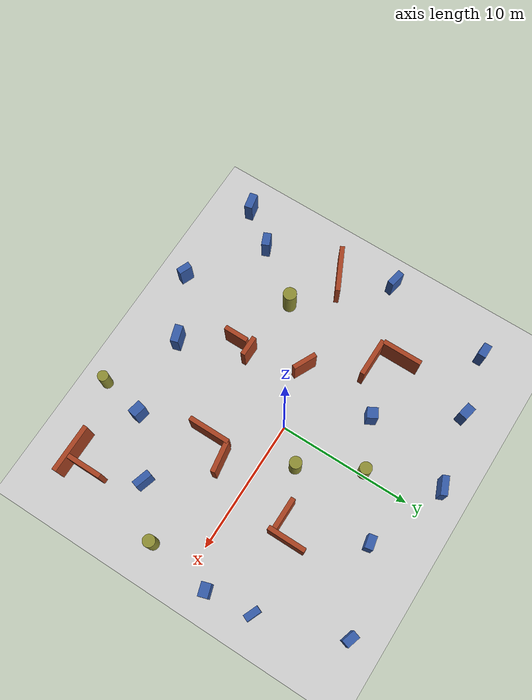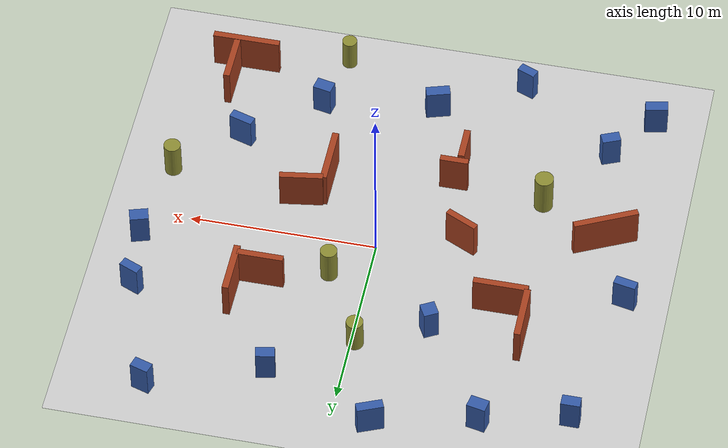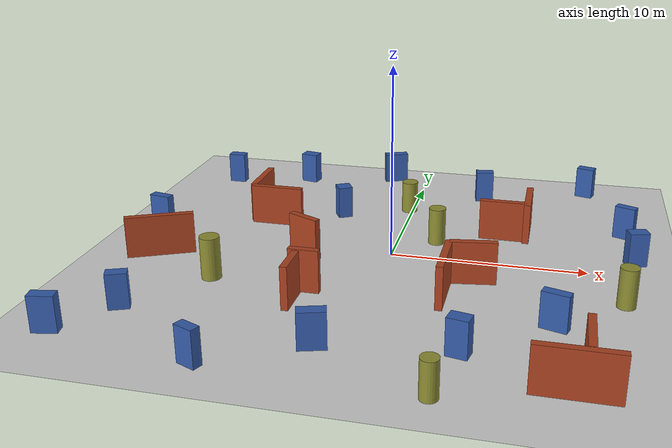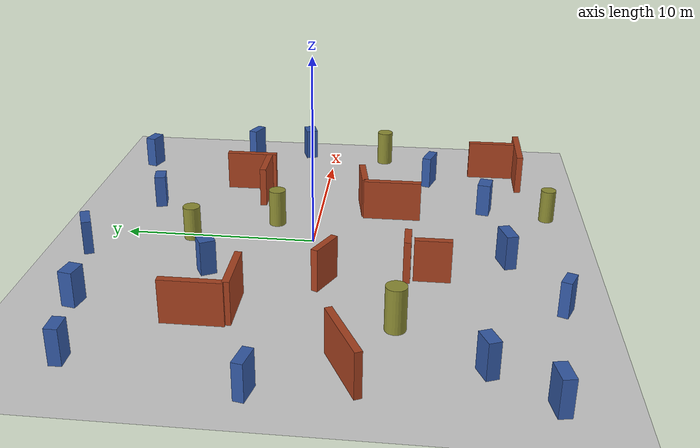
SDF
<sdf version='1.7'>
  <world name='dense_nonconvex'>
    <light name='sun' type='directional'>
      <cast_shadows>1</cast_shadows>
      <pose>0 0 18 0 -0 0</pose>
      <diffuse>0.8 0.8 0.8 1</diffuse>
      <specular>0.2 0.2 0.2 1</specular>
      <attenuation>
        <range>1000</range>
        <constant>0.9</constant>
        <linear>0.01</linear>
        <quadratic>0.001</quadratic>
      </attenuation>
      <direction>-0.5 0.1 -0.9</direction>
      <spot>
        <inner_angle>0</inner_angle>
        <outer_angle>0</outer_angle>
        <falloff>0</falloff>
      </spot>
    </light>
    <model name='ground_plane'>
      <static>1</static>
      <link name='link'>
        <collision name='collision'>
          <geometry>
            <plane>
              <normal>0 0 1</normal>
              <size>100 100</size>
            </plane>
          </geometry>
          <max_contacts>10</max_contacts>
          <surface>
            <contact>
              <ode/>
            </contact>
            <bounce/>
            <friction>
              <torsional>
                <ode/>
              </torsional>
              <ode/>
            </friction>
          </surface>
        </collision>
        <visual name='visual'>
          <geometry>
            <plane>
              <normal>0 0 1</normal>
              <size>100 100</size>
            </plane>
          </geometry>
        </visual>
        <self_collide>0</self_collide>
        <enable_wind>0</enable_wind>
        <kinematic>0</kinematic>
      </link>
    </model>
    <gravity>0 0 -9.8</gravity>
    <physics type='ode'>
      <max_step_size>0.001</max_step_size>
      <real_time_factor>1</real_time_factor>
      <real_time_update_rate>1000</real_time_update_rate>
    </physics>
    <scene>
      <ambient>0.4 0.4 0.4 1</ambient>
      <background>0.7 0.7 0.7 1</background>
      <shadows>1</shadows>
    </scene>
    <model name='s2_u1_left'>
      <static>1</static>
      <pose>-8.59511 4.37019 1.1 0 0 0</pose>
      <link name='link'>
        <collision name='collision'>
          <geometry>
            <box>
              <size>0.35 2.998894236 2.2</size>
            </box>
          </geometry>
          <max_contacts>10</max_contacts>
          <surface>
            <contact>
              <ode/>
            </contact>
            <bounce/>
            <friction>
              <torsional>
                <ode/>
              </torsional>
              <ode/>
            </friction>
          </surface>
        </collision>
        <visual name='visual'>
          <geometry>
            <box>
              <size>0.35 2.998894236 2.2</size>
            </box>
          </geometry>
          <material>
            <ambient>0.65 0.25 0.12 1</ambient>
            <diffuse>0.65 0.25 0.12 1</diffuse>
          </material>
        </visual>
        <self_collide>0</self_collide>
        <enable_wind>0</enable_wind>
        <kinematic>0</kinematic>
      </link>
    </model>
    <model name='s2_u1_bottom'>
      <static>1</static>
      <pose>-7.17227 2.78971 1.1 0 0 0</pose>
      <link name='link'>
        <collision name='collision'>
          <geometry>
            <box>
              <size>2.904638567 0.35 2.2</size>
            </box>
          </geometry>
          <max_contacts>10</max_contacts>
          <surface>
            <contact>
              <ode/>
            </contact>
            <bounce/>
            <friction>
              <torsional>
                <ode/>
              </torsional>
              <ode/>
            </friction>
          </surface>
        </collision>
        <visual name='visual'>
          <geometry>
            <box>
              <size>2.904638567 0.35 2.2</size>
            </box>
          </geometry>
          <material>
            <ambient>0.65 0.25 0.12 1</ambient>
            <diffuse>0.65 0.25 0.12 1</diffuse>
          </material>
        </visual>
        <self_collide>0</self_collide>
        <enable_wind>0</enable_wind>
        <kinematic>0</kinematic>
      </link>
    </model>
    <model name='s2_u2_right'>
      <static>1</static>
      <pose>6.72366 4.45324 1.1 0 0 0</pose>
      <link name='link'>
        <collision name='collision'>
          <geometry>
            <box>
              <size>0.35 2.869932835 2.2</size>
            </box>
          </geometry>
          <max_contacts>10</max_contacts>
          <surface>
            <contact>
              <ode/>
            </contact>
            <bounce/>
            <friction>
              <torsional>
                <ode/>
              </torsional>
              <ode/>
            </friction>
          </surface>
        </collision>
        <visual name='visual'>
          <geometry>
            <box>
              <size>0.35 2.869932835 2.2</size>
            </box>
          </geometry>
          <material>
            <ambient>0.65 0.25 0.12 1</ambient>
            <diffuse>0.65 0.25 0.12 1</diffuse>
          </material>
        </visual>
        <self_collide>0</self_collide>
        <enable_wind>0</enable_wind>
        <kinematic>0</kinematic>
      </link>
    </model>
    <model name='s2_u2_bottom'>
      <static>1</static>
      <pose>5.4333 3.39274 1.1 0 0 0</pose>
      <link name='link'>
        <collision name='collision'>
          <geometry>
            <box>
              <size>2.456924136 0.35 2.2</size>
            </box>
          </geometry>
          <max_contacts>10</max_contacts>
          <surface>
            <contact>
              <ode/>
            </contact>
            <bounce/>
            <friction>
              <torsional>
                <ode/>
              </torsional>
              <ode/>
            </friction>
          </surface>
        </collision>
        <visual name='visual'>
          <geometry>
            <box>
              <size>2.456924136 0.35 2.2</size>
            </box>
          </geometry>
          <material>
            <ambient>0.65 0.25 0.12 1</ambient>
            <diffuse>0.65 0.25 0.12 1</diffuse>
          </material>
        </visual>
        <self_collide>0</self_collide>
        <enable_wind>0</enable_wind>
        <kinematic>0</kinematic>
      </link>
    </model>
    <model name='s2_c1_bottom'>
      <static>1</static>
      <pose>-3.1989 -5.00563 1.1 0 0 0</pose>
      <link name='link'>
        <collision name='collision'>
          <geometry>
            <box>
              <size>1.511298437 0.35 2.2</size>
            </box>
          </geometry>
          <max_contacts>10</max_contacts>
          <surface>
            <contact>
              <ode/>
            </contact>
            <bounce/>
            <friction>
              <torsional>
                <ode/>
              </torsional>
              <ode/>
            </friction>
          </surface>
        </collision>
        <visual name='visual'>
          <geometry>
            <box>
              <size>1.511298437 0.35 2.2</size>
            </box>
          </geometry>
          <material>
            <ambient>0.65 0.25 0.12 1</ambient>
            <diffuse>0.65 0.25 0.12 1</diffuse>
          </material>
        </visual>
        <self_collide>0</self_collide>
        <enable_wind>0</enable_wind>
        <kinematic>0</kinematic>
      </link>
    </model>
    <model name='s2_c1_left'>
      <static>1</static>
      <pose>-3.5026 -6.2322 1.1 0 0 0</pose>
      <link name='link'>
        <collision name='collision'>
          <geometry>
            <box>
              <size>0.35 1.822557386 2.2</size>
            </box>
          </geometry>
          <max_contacts>10</max_contacts>
          <surface>
            <contact>
              <ode/>
            </contact>
            <bounce/>
            <friction>
              <torsional>
                <ode/>
              </torsional>
              <ode/>
            </friction>
          </surface>
        </collision>
        <visual name='visual'>
          <geometry>
            <box>
              <size>0.35 1.822557386 2.2</size>
            </box>
          </geometry>
          <material>
            <ambient>0.65 0.25 0.12 1</ambient>
            <diffuse>0.65 0.25 0.12 1</diffuse>
          </material>
        </visual>
        <self_collide>0</self_collide>
        <enable_wind>0</enable_wind>
        <kinematic>0</kinematic>
      </link>
    </model>
    <model name='s2_l1_horizontal'>
      <static>1</static>
      <pose>4.50293 -2.30981 1.1 0 0 0.15</pose>
      <link name='link'>
        <collision name='collision'>
          <geometry>
            <box>
              <size>2.30892502 0.35 2.2</size>
            </box>
          </geometry>
          <max_contacts>10</max_contacts>
          <surface>
            <contact>
              <ode/>
            </contact>
            <bounce/>
            <friction>
              <torsional>
                <ode/>
              </torsional>
              <ode/>
            </friction>
          </surface>
        </collision>
        <visual name='visual'>
          <geometry>
            <box>
              <size>2.30892502 0.35 2.2</size>
            </box>
          </geometry>
          <material>
            <ambient>0.65 0.25 0.12 1</ambient>
            <diffuse>0.65 0.25 0.12 1</diffuse>
          </material>
        </visual>
        <self_collide>0</self_collide>
        <enable_wind>0</enable_wind>
        <kinematic>0</kinematic>
      </link>
    </model>
    <model name='s2_l1_vertical'>
      <static>1</static>
      <pose>3.32692 -3.97078 1.1 0 0 0</pose>
      <link name='link'>
        <collision name='collision'>
          <geometry>
            <box>
              <size>0.35 3.135861476 2.2</size>
            </box>
          </geometry>
          <max_contacts>10</max_contacts>
          <surface>
            <contact>
              <ode/>
            </contact>
            <bounce/>
            <friction>
              <torsional>
                <ode/>
              </torsional>
              <ode/>
            </friction>
          </surface>
        </collision>
        <visual name='visual'>
          <geometry>
            <box>
              <size>0.35 3.135861476 2.2</size>
            </box>
          </geometry>
          <material>
            <ambient>0.65 0.25 0.12 1</ambient>
            <diffuse>0.65 0.25 0.12 1</diffuse>
          </material>
        </visual>
        <self_collide>0</self_collide>
        <enable_wind>0</enable_wind>
        <kinematic>0</kinematic>
      </link>
    </model>
    <model name='s2_zig_1'>
      <static>1</static>
      <pose>-11.7393 -2.64922 1.1 0 0 0.45</pose>
      <link name='link'>
        <collision name='collision'>
          <geometry>
            <box>
              <size>3.5 0.35 2.2</size>
            </box>
          </geometry>
          <max_contacts>10</max_contacts>
          <surface>
            <contact>
              <ode/>
            </contact>
            <bounce/>
            <friction>
              <torsional>
                <ode/>
              </torsional>
              <ode/>
            </friction>
          </surface>
        </collision>
        <visual name='visual'>
          <geometry>
            <box>
              <size>3.5 0.35 2.2</size>
            </box>
          </geometry>
          <material>
            <ambient>0.65 0.25 0.12 1</ambient>
            <diffuse>0.65 0.25 0.12 1</diffuse>
          </material>
        </visual>
        <self_collide>0</self_collide>
        <enable_wind>0</enable_wind>
        <kinematic>0</kinematic>
      </link>
    </model>
    <model name='s2_zig_2'>
      <static>1</static>
      <pose>-4.37361 -1.08131 1.1 0 0 -0.45</pose>
      <link name='link'>
        <collision name='collision'>
          <geometry>
            <box>
              <size>1.81919982 0.35 2.2</size>
            </box>
          </geometry>
          <max_contacts>10</max_contacts>
          <surface>
            <contact>
              <ode/>
            </contact>
            <bounce/>
            <friction>
              <torsional>
                <ode/>
              </torsional>
              <ode/>
            </friction>
          </surface>
        </collision>
        <visual name='visual'>
          <geometry>
            <box>
              <size>1.81919982 0.35 2.2</size>
            </box>
          </geometry>
          <material>
            <ambient>0.65 0.25 0.12 1</ambient>
            <diffuse>0.65 0.25 0.12 1</diffuse>
          </material>
        </visual>
        <self_collide>0</self_collide>
        <enable_wind>0</enable_wind>
        <kinematic>0</kinematic>
      </link>
    </model>
    <model name='s2_box_00'>
      <static>1</static>
      <pose>-12.0188 9.20646 0.9 0 0 0</pose>
      <link name='link'>
        <collision name='collision'>
          <geometry>
            <box>
              <size>1 0.6 1.8</size>
            </box>
          </geometry>
          <max_contacts>10</max_contacts>
          <surface>
            <contact>
              <ode/>
            </contact>
            <bounce/>
            <friction>
              <torsional>
                <ode/>
              </torsional>
              <ode/>
            </friction>
          </surface>
        </collision>
        <visual name='visual'>
          <geometry>
            <box>
              <size>1 0.6 1.8</size>
            </box>
          </geometry>
          <material>
            <ambient>0.2 0.35 0.65 1</ambient>
            <diffuse>0.2 0.35 0.65 1</diffuse>
          </material>
        </visual>
        <self_collide>0</self_collide>
        <enable_wind>0</enable_wind>
        <kinematic>0</kinematic>
      </link>
    </model>
    <model name='s2_box_02'>
      <static>1</static>
      <pose>-7.42861 10.3015 0.9 0 0 -0.2</pose>
      <link name='link'>
        <collision name='collision'>
          <geometry>
            <box>
              <size>1 0.7 1.8</size>
            </box>
          </geometry>
          <max_contacts>10</max_contacts>
          <surface>
            <contact>
              <ode/>
            </contact>
            <bounce/>
            <friction>
              <torsional>
                <ode/>
              </torsional>
              <ode/>
            </friction>
          </surface>
        </collision>
        <visual name='visual'>
          <geometry>
            <box>
              <size>1 0.7 1.8</size>
            </box>
          </geometry>
          <material>
            <ambient>0.2 0.35 0.65 1</ambient>
            <diffuse>0.2 0.35 0.65 1</diffuse>
          </material>
        </visual>
        <self_collide>0</self_collide>
        <enable_wind>0</enable_wind>
        <kinematic>0</kinematic>
      </link>
    </model>
    <model name='s2_box_03'>
      <static>1</static>
      <pose>-2.07715 11.5373 0.9 0 0 0.4</pose>
      <link name='link'>
        <collision name='collision'>
          <geometry>
            <box>
              <size>1.4 0.5 1.8</size>
            </box>
          </geometry>
          <max_contacts>10</max_contacts>
          <surface>
            <contact>
              <ode/>
            </contact>
            <bounce/>
            <friction>
              <torsional>
                <ode/>
              </torsional>
              <ode/>
            </friction>
          </surface>
        </collision>
        <visual name='visual'>
          <geometry>
            <box>
              <size>1.4 0.5 1.8</size>
            </box>
          </geometry>
          <material>
            <ambient>0.2 0.35 0.65 1</ambient>
            <diffuse>0.2 0.35 0.65 1</diffuse>
          </material>
        </visual>
        <self_collide>0</self_collide>
        <enable_wind>0</enable_wind>
        <kinematic>0</kinematic>
      </link>
    </model>
    <model name='s2_box_04'>
      <static>1</static>
      <pose>9.85318 11.327 0.9 0 0 -0.3</pose>
      <link name='link'>
        <collision name='collision'>
          <geometry>
            <box>
              <size>1 0.6 1.8</size>
            </box>
          </geometry>
          <max_contacts>10</max_contacts>
          <surface>
            <contact>
              <ode/>
            </contact>
            <bounce/>
            <friction>
              <torsional>
                <ode/>
              </torsional>
              <ode/>
            </friction>
          </surface>
        </collision>
        <visual name='visual'>
          <geometry>
            <box>
              <size>1 0.6 1.8</size>
            </box>
          </geometry>
          <material>
            <ambient>0.2 0.35 0.65 1</ambient>
            <diffuse>0.2 0.35 0.65 1</diffuse>
          </material>
        </visual>
        <self_collide>0</self_collide>
        <enable_wind>0</enable_wind>
        <kinematic>0</kinematic>
      </link>
    </model>
    <model name='s2_box_06'>
      <static>1</static>
      <pose>-3.81421 4.83715 0.9 0 0 0.5</pose>
      <link name='link'>
        <collision name='collision'>
          <geometry>
            <box>
              <size>0.8 0.8 1.8</size>
            </box>
          </geometry>
          <max_contacts>10</max_contacts>
          <surface>
            <contact>
              <ode/>
            </contact>
            <bounce/>
            <friction>
              <torsional>
                <ode/>
              </torsional>
              <ode/>
            </friction>
          </surface>
        </collision>
        <visual name='visual'>
          <geometry>
            <box>
              <size>0.8 0.8 1.8</size>
            </box>
          </geometry>
          <material>
            <ambient>0.2 0.35 0.65 1</ambient>
            <diffuse>0.2 0.35 0.65 1</diffuse>
          </material>
        </visual>
        <self_collide>0</self_collide>
        <enable_wind>0</enable_wind>
        <kinematic>0</kinematic>
      </link>
    </model>
    <model name='s2_box_07'>
      <static>1</static>
      <pose>3.85539 9.25884 0.9 0 0 0.2</pose>
      <link name='link'>
        <collision name='collision'>
          <geometry>
            <box>
              <size>1 0.6 1.8</size>
            </box>
          </geometry>
          <max_contacts>10</max_contacts>
          <surface>
            <contact>
              <ode/>
            </contact>
            <bounce/>
            <friction>
              <torsional>
                <ode/>
              </torsional>
              <ode/>
            </friction>
          </surface>
        </collision>
        <visual name='visual'>
          <geometry>
            <box>
              <size>1 0.6 1.8</size>
            </box>
          </geometry>
          <material>
            <ambient>0.2 0.35 0.65 1</ambient>
            <diffuse>0.2 0.35 0.65 1</diffuse>
          </material>
        </visual>
        <self_collide>0</self_collide>
        <enable_wind>0</enable_wind>
        <kinematic>0</kinematic>
      </link>
    </model>
    <model name='s2_box_08'>
      <static>1</static>
      <pose>11.9319 5.11704 0.9 0 0 -0.4</pose>
      <link name='link'>
        <collision name='collision'>
          <geometry>
            <box>
              <size>1.1 0.5 1.8</size>
            </box>
          </geometry>
          <max_contacts>10</max_contacts>
          <surface>
            <contact>
              <ode/>
            </contact>
            <bounce/>
            <friction>
              <torsional>
                <ode/>
              </torsional>
              <ode/>
            </friction>
          </surface>
        </collision>
        <visual name='visual'>
          <geometry>
            <box>
              <size>1.1 0.5 1.8</size>
            </box>
          </geometry>
          <material>
            <ambient>0.2 0.35 0.65 1</ambient>
            <diffuse>0.2 0.35 0.65 1</diffuse>
          </material>
        </visual>
        <self_collide>0</self_collide>
        <enable_wind>0</enable_wind>
        <kinematic>0</kinematic>
      </link>
    </model>
    <model name='s2_box_09'>
      <static>1</static>
      <pose>-13.4378 1.08581 0.9 0 0 -0.2</pose>
      <link name='link'>
        <collision name='collision'>
          <geometry>
            <box>
              <size>1.2 0.5 1.8</size>
            </box>
          </geometry>
          <max_contacts>10</max_contacts>
          <surface>
            <contact>
              <ode/>
            </contact>
            <bounce/>
            <friction>
              <torsional>
                <ode/>
              </torsional>
              <ode/>
            </friction>
          </surface>
        </collision>
        <visual name='visual'>
          <geometry>
            <box>
              <size>1.2 0.5 1.8</size>
            </box>
          </geometry>
          <material>
            <ambient>0.2 0.35 0.65 1</ambient>
            <diffuse>0.2 0.35 0.65 1</diffuse>
          </material>
        </visual>
        <self_collide>0</self_collide>
        <enable_wind>0</enable_wind>
        <kinematic>0</kinematic>
      </link>
    </model>
    <model name='s2_box_10'>
      <static>1</static>
      <pose>12.3434 1.68304 0.9 0 0 0.3</pose>
      <link name='link'>
        <collision name='collision'>
          <geometry>
            <box>
              <size>1 0.7 1.8</size>
            </box>
          </geometry>
          <max_contacts>10</max_contacts>
          <surface>
            <contact>
              <ode/>
            </contact>
            <bounce/>
            <friction>
              <torsional>
                <ode/>
              </torsional>
              <ode/>
            </friction>
          </surface>
        </collision>
        <visual name='visual'>
          <geometry>
            <box>
              <size>1 0.7 1.8</size>
            </box>
          </geometry>
          <material>
            <ambient>0.2 0.35 0.65 1</ambient>
            <diffuse>0.2 0.35 0.65 1</diffuse>
          </material>
        </visual>
        <self_collide>0</self_collide>
        <enable_wind>0</enable_wind>
        <kinematic>0</kinematic>
      </link>
    </model>
    <model name='s2_box_11'>
      <static>1</static>
      <pose>-11.0025 -8.52272 0.9 0 0 0.4</pose>
      <link name='link'>
        <collision name='collision'>
          <geometry>
            <box>
              <size>1 0.6 1.8</size>
            </box>
          </geometry>
          <max_contacts>10</max_contacts>
          <surface>
            <contact>
              <ode/>
            </contact>
            <bounce/>
            <friction>
              <torsional>
                <ode/>
              </torsional>
              <ode/>
            </friction>
          </surface>
        </collision>
        <visual name='visual'>
          <geometry>
            <box>
              <size>1 0.6 1.8</size>
            </box>
          </geometry>
          <material>
            <ambient>0.2 0.35 0.65 1</ambient>
            <diffuse>0.2 0.35 0.65 1</diffuse>
          </material>
        </visual>
        <self_collide>0</self_collide>
        <enable_wind>0</enable_wind>
        <kinematic>0</kinematic>
      </link>
    </model>
    <model name='s2_box_12'>
      <static>1</static>
      <pose>8.53425 -5.98422 0.9 0 0 -0.3</pose>
      <link name='link'>
        <collision name='collision'>
          <geometry>
            <box>
              <size>1.3 0.5 1.8</size>
            </box>
          </geometry>
          <max_contacts>10</max_contacts>
          <surface>
            <contact>
              <ode/>
            </contact>
            <bounce/>
            <friction>
              <torsional>
                <ode/>
              </torsional>
              <ode/>
            </friction>
          </surface>
        </collision>
        <visual name='visual'>
          <geometry>
            <box>
              <size>1.3 0.5 1.8</size>
            </box>
          </geometry>
          <material>
            <ambient>0.2 0.35 0.65 1</ambient>
            <diffuse>0.2 0.35 0.65 1</diffuse>
          </material>
        </visual>
        <self_collide>0</self_collide>
        <enable_wind>0</enable_wind>
        <kinematic>0</kinematic>
      </link>
    </model>
    <model name='s2_box_13'>
      <static>1</static>
      <pose>-13.0419 -11.2015 0.9 0 0 0.2</pose>
      <link name='link'>
        <collision name='collision'>
          <geometry>
            <box>
              <size>1.2 0.6 1.8</size>
            </box>
          </geometry>
          <max_contacts>10</max_contacts>
          <surface>
            <contact>
              <ode/>
            </contact>
            <bounce/>
            <friction>
              <torsional>
                <ode/>
              </torsional>
              <ode/>
            </friction>
          </surface>
        </collision>
        <visual name='visual'>
          <geometry>
            <box>
              <size>1.2 0.6 1.8</size>
            </box>
          </geometry>
          <material>
            <ambient>0.2 0.35 0.65 1</ambient>
            <diffuse>0.2 0.35 0.65 1</diffuse>
          </material>
        </visual>
        <self_collide>0</self_collide>
        <enable_wind>0</enable_wind>
        <kinematic>0</kinematic>
      </link>
    </model>
    <model name='s2_box_14'>
      <static>1</static>
      <pose>-5.82132 -12.321 0.9 0 0 -0.4</pose>
      <link name='link'>
        <collision name='collision'>
          <geometry>
            <box>
              <size>1 0.5 1.8</size>
            </box>
          </geometry>
          <max_contacts>10</max_contacts>
          <surface>
            <contact>
              <ode/>
            </contact>
            <bounce/>
            <friction>
              <torsional>
                <ode/>
              </torsional>
              <ode/>
            </friction>
          </surface>
        </collision>
        <visual name='visual'>
          <geometry>
            <box>
              <size>1 0.5 1.8</size>
            </box>
          </geometry>
          <material>
            <ambient>0.2 0.35 0.65 1</ambient>
            <diffuse>0.2 0.35 0.65 1</diffuse>
          </material>
        </visual>
        <self_collide>0</self_collide>
        <enable_wind>0</enable_wind>
        <kinematic>0</kinematic>
      </link>
    </model>
    <model name='s2_box_15'>
      <static>1</static>
      <pose>-1.35004 -9.92107 0.9 0 0 0.3</pose>
      <link name='link'>
        <collision name='collision'>
          <geometry>
            <box>
              <size>1.3 0.6 1.8</size>
            </box>
          </geometry>
          <max_contacts>10</max_contacts>
          <surface>
            <contact>
              <ode/>
            </contact>
            <bounce/>
            <friction>
              <torsional>
                <ode/>
              </torsional>
              <ode/>
            </friction>
          </surface>
        </collision>
        <visual name='visual'>
          <geometry>
            <box>
              <size>1.3 0.6 1.8</size>
            </box>
          </geometry>
          <material>
            <ambient>0.2 0.35 0.65 1</ambient>
            <diffuse>0.2 0.35 0.65 1</diffuse>
          </material>
        </visual>
        <self_collide>0</self_collide>
        <enable_wind>0</enable_wind>
        <kinematic>0</kinematic>
      </link>
    </model>
    <model name='s2_box_16'>
      <static>1</static>
      <pose>4.72778 -9.08943 0.9 0 0 -0.2</pose>
      <link name='link'>
        <collision name='collision'>
          <geometry>
            <box>
              <size>1 0.7 1.8</size>
            </box>
          </geometry>
          <max_contacts>10</max_contacts>
          <surface>
            <contact>
              <ode/>
            </contact>
            <bounce/>
            <friction>
              <torsional>
                <ode/>
              </torsional>
              <ode/>
            </friction>
          </surface>
        </collision>
        <visual name='visual'>
          <geometry>
            <box>
              <size>1 0.7 1.8</size>
            </box>
          </geometry>
          <material>
            <ambient>0.2 0.35 0.65 1</ambient>
            <diffuse>0.2 0.35 0.65 1</diffuse>
          </material>
        </visual>
        <self_collide>0</self_collide>
        <enable_wind>0</enable_wind>
        <kinematic>0</kinematic>
      </link>
    </model>
    <model name='s2_cylinder_06'>
      <static>1</static>
      <pose>-0.22479 6.42848 0.9 0 0 0</pose>
      <link name='link'>
        <collision name='collision'>
          <geometry>
            <cylinder>
              <radius>0.45</radius>
              <length>1.8</length>
            </cylinder>
          </geometry>
          <max_contacts>10</max_contacts>
          <surface>
            <contact>
              <ode/>
            </contact>
            <bounce/>
            <friction>
              <torsional>
                <ode/>
              </torsional>
              <ode/>
            </friction>
          </surface>
        </collision>
        <visual name='visual'>
          <geometry>
            <cylinder>
              <radius>0.45</radius>
              <length>1.8</length>
            </cylinder>
          </geometry>
          <material>
            <ambient>0.55 0.55 0.2 1</ambient>
            <diffuse>0.55 0.55 0.2 1</diffuse>
          </material>
        </visual>
        <self_collide>0</self_collide>
        <enable_wind>0</enable_wind>
        <kinematic>0</kinematic>
      </link>
    </model>
    <model name='s2_cylinder_10'>
      <static>1</static>
      <pose>4.04289 -12.4795 0.9 0 0 0</pose>
      <link name='link'>
        <collision name='collision'>
          <geometry>
            <cylinder>
              <radius>0.4</radius>
              <length>1.8</length>
            </cylinder>
          </geometry>
          <max_contacts>10</max_contacts>
          <surface>
            <contact>
              <ode/>
            </contact>
            <bounce/>
            <friction>
              <torsional>
                <ode/>
              </torsional>
              <ode/>
            </friction>
          </surface>
        </collision>
        <visual name='visual'>
          <geometry>
            <cylinder>
              <radius>0.4</radius>
              <length>1.8</length>
            </cylinder>
          </geometry>
          <material>
            <ambient>0.55 0.55 0.2 1</ambient>
            <diffuse>0.55 0.55 0.2 1</diffuse>
          </material>
        </visual>
        <self_collide>0</self_collide>
        <enable_wind>0</enable_wind>
        <kinematic>0</kinematic>
      </link>
    </model>
    <model name='s2_cylinder_12'>
      <static>1</static>
      <pose>11.6976 -3.15192 1 0 0 0</pose>
      <link name='link'>
        <collision name='collision'>
          <geometry>
            <cylinder>
              <radius>0.45</radius>
              <length>2</length>
            </cylinder>
          </geometry>
          <max_contacts>10</max_contacts>
          <surface>
            <contact>
              <ode/>
            </contact>
            <bounce/>
            <friction>
              <torsional>
                <ode/>
              </torsional>
              <ode/>
            </friction>
          </surface>
        </collision>
        <visual name='visual'>
          <geometry>
            <cylinder>
              <radius>0.45</radius>
              <length>2</length>
            </cylinder>
          </geometry>
          <material>
            <ambient>0.55 0.55 0.2 1</ambient>
            <diffuse>0.55 0.55 0.2 1</diffuse>
          </material>
        </visual>
        <self_collide>0</self_collide>
        <enable_wind>0</enable_wind>
        <kinematic>0</kinematic>
      </link>
    </model>
    <model name='s2_cylinder_13'>
      <static>1</static>
      <pose>-8.1014 -4.65003 1.1 0 0 0</pose>
      <link name='link'>
        <collision name='collision'>
          <geometry>
            <cylinder>
              <radius>0.5</radius>
              <length>2.2</length>
            </cylinder>
          </geometry>
          <max_contacts>10</max_contacts>
          <surface>
            <contact>
              <ode/>
            </contact>
            <bounce/>
            <friction>
              <torsional>
                <ode/>
              </torsional>
              <ode/>
            </friction>
          </surface>
        </collision>
        <visual name='visual'>
          <geometry>
            <cylinder>
              <radius>0.5</radius>
              <length>2.2</length>
            </cylinder>
          </geometry>
          <material>
            <ambient>0.55 0.55 0.2 1</ambient>
            <diffuse>0.55 0.55 0.2 1</diffuse>
          </material>
        </visual>
        <self_collide>0</self_collide>
        <enable_wind>0</enable_wind>
        <kinematic>0</kinematic>
      </link>
    </model>
    <model name='s2_cylinder_14'>
      <static>1</static>
      <pose>2.04268 2.22203 0.95682 0 0 0</pose>
      <link name='link'>
        <collision name='collision'>
          <geometry>
            <cylinder>
              <radius>0.45</radius>
              <length>2</length>
            </cylinder>
          </geometry>
          <max_contacts>10</max_contacts>
          <surface>
            <contact>
              <ode/>
            </contact>
            <bounce/>
            <friction>
              <torsional>
                <ode/>
              </torsional>
              <ode/>
            </friction>
          </surface>
        </collision>
        <visual name='visual'>
          <geometry>
            <cylinder>
              <radius>0.45</radius>
              <length>2</length>
            </cylinder>
          </geometry>
          <material>
            <ambient>0.55 0.55 0.2 1</ambient>
            <diffuse>0.55 0.55 0.2 1</diffuse>
          </material>
        </visual>
        <self_collide>0</self_collide>
        <enable_wind>0</enable_wind>
        <kinematic>0</kinematic>
      </link>
    </model>
    <magnetic_field>6e-06 2.3e-05 -4.2e-05</magnetic_field>
    <atmosphere type='adiabatic'/>
    <wind/>
    <spherical_coordinates>
      <surface_model>EARTH_WGS84</surface_model>
      <latitude_deg>0</latitude_deg>
      <longitude_deg>0</longitude_deg>
      <elevation>0</elevation>
      <heading_deg>0</heading_deg>
    </spherical_coordinates>
    <model name='s2_c1_bottom_clone'>
      <static>1</static>
      <pose>9.47219 -11.1988 1.1 0 0 0</pose>
      <link name='link'>
        <collision name='collision'>
          <geometry>
            <box>
              <size>3.62523 0.35 2.2</size>
            </box>
          </geometry>
          <max_contacts>10</max_contacts>
          <surface>
            <contact>
              <ode/>
            </contact>
            <bounce/>
            <friction>
              <torsional>
                <ode/>
              </torsional>
              <ode/>
            </friction>
          </surface>
        </collision>
        <visual name='visual'>
          <geometry>
            <box>
              <size>3.62523 0.35 2.2</size>
            </box>
          </geometry>
          <material>
            <ambient>0.65 0.25 0.12 1</ambient>
            <diffuse>0.65 0.25 0.12 1</diffuse>
          </material>
        </visual>
        <self_collide>0</self_collide>
        <enable_wind>0</enable_wind>
        <kinematic>0</kinematic>
      </link>
    </model>
    <model name='s2_c1_left_clone'>
      <static>1</static>
      <pose>9.94115 -9.68191 1.1 0 0 0</pose>
      <link name='link'>
        <collision name='collision'>
          <geometry>
            <box>
              <size>0.35 2.6485 2.2</size>
            </box>
          </geometry>
          <max_contacts>10</max_contacts>
          <surface>
            <contact>
              <ode/>
            </contact>
            <bounce/>
            <friction>
              <torsional>
                <ode/>
              </torsional>
              <ode/>
            </friction>
          </surface>
        </collision>
        <visual name='visual'>
          <geometry>
            <box>
              <size>0.35 2.6485 2.2</size>
            </box>
          </geometry>
          <material>
            <ambient>0.65 0.25 0.12 1</ambient>
            <diffuse>0.65 0.25 0.12 1</diffuse>
          </material>
        </visual>
        <self_collide>0</self_collide>
        <enable_wind>0</enable_wind>
        <kinematic>0</kinematic>
      </link>
    </model>
    <gui fullscreen='0'>
      <camera name='user_camera'>
        <pose>1.95631 6.58784 60.5263 -0 1.40179 -1.55983</pose>
        <view_controller>orbit</view_controller>
        <projection_type>perspective</projection_type>
      </camera>
    </gui>
  </world>
</sdf>
